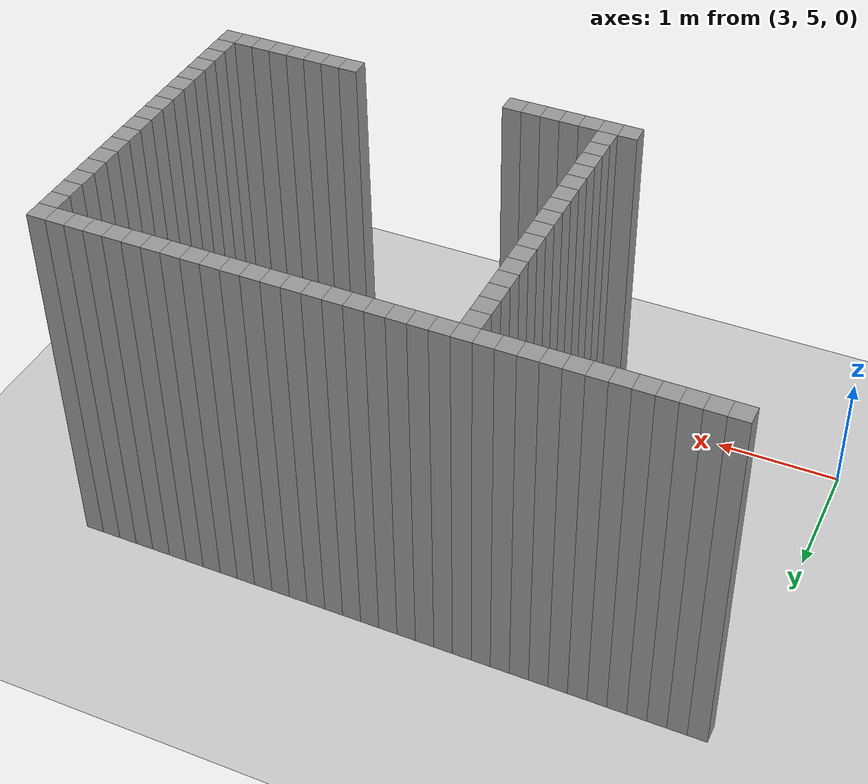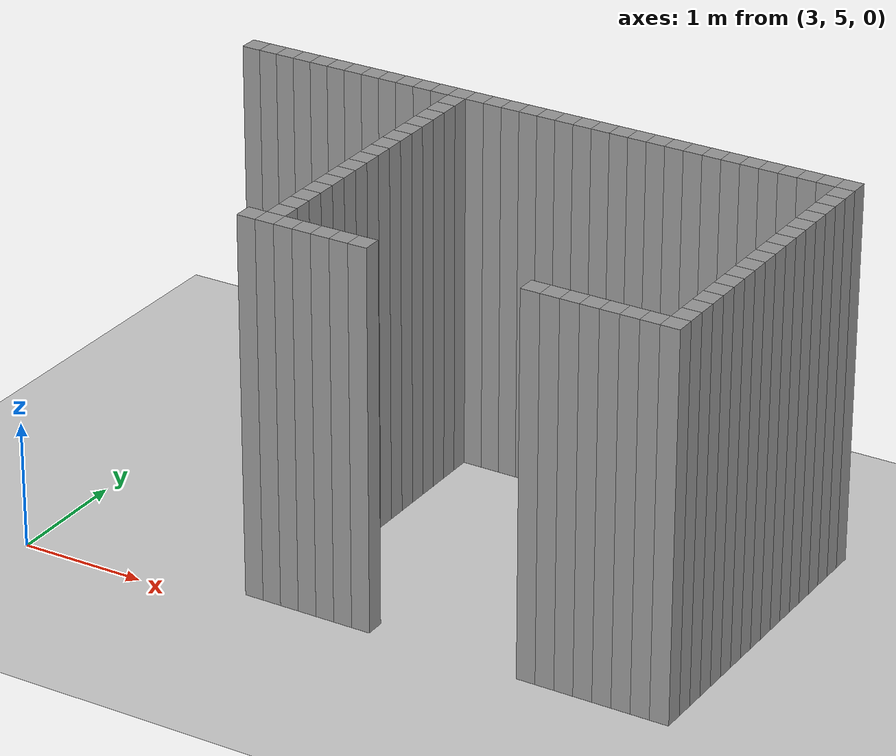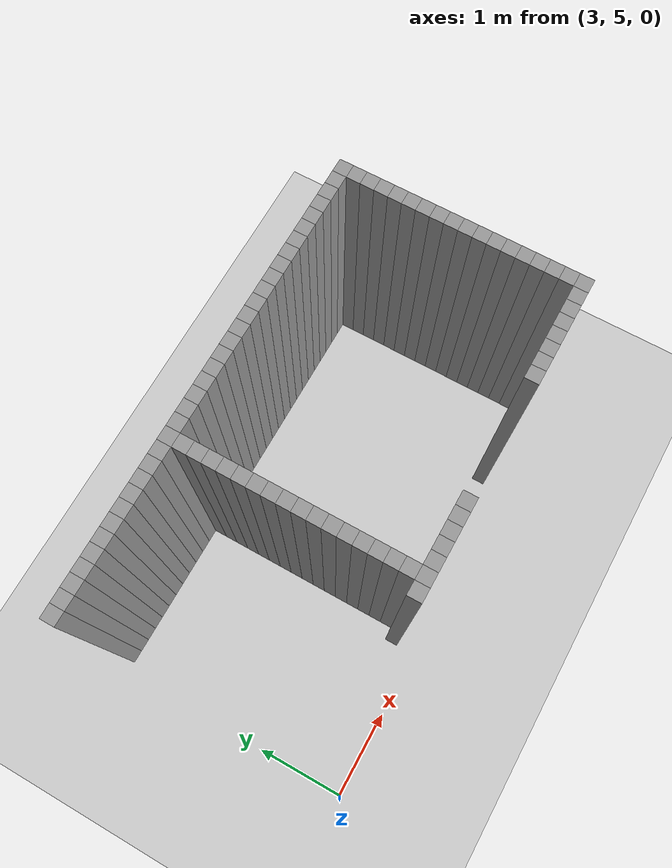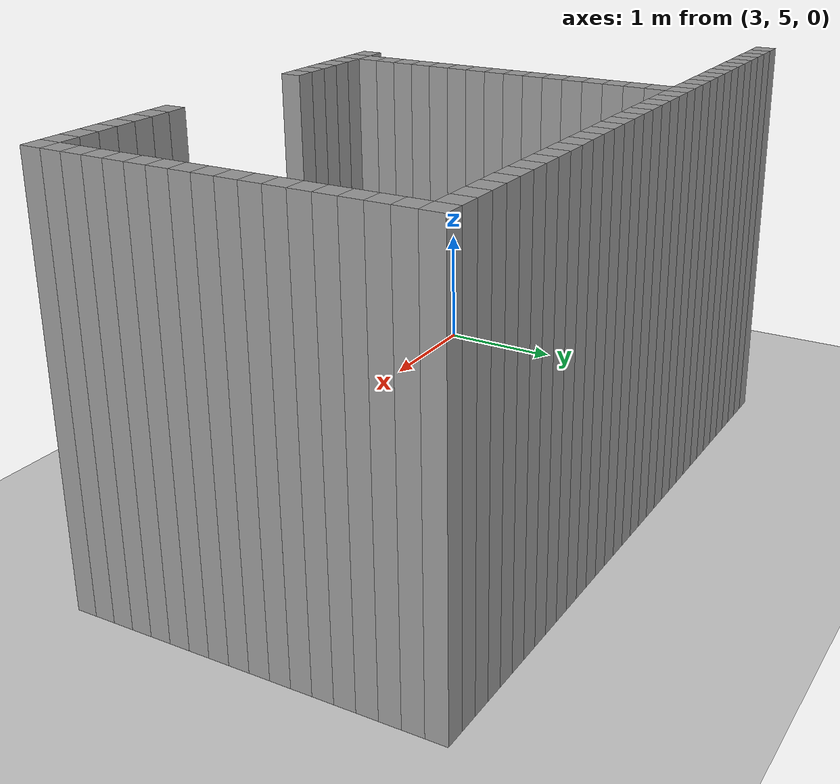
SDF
<sdf version="1.7">
 <world name="default">
  <model name="ground_plane">
   <static>1</static>
   <link name="link">
    <collision name="collision">
     <geometry><plane><normal>0 0 1</normal><size>100 100</size></plane></geometry>
     <surface>
      <contact><collide_bitmask>65535</collide_bitmask></contact>
      <friction><ode><mu>100</mu><mu2>50</mu2></ode></friction>
     </surface>
    </collision>
    <visual name="visual">
     <cast_shadows>0</cast_shadows>
     <geometry><plane><normal>0 0 1</normal><size>100 100</size></plane></geometry>
     <material>
      <script><uri>file://media/materials/scripts/gazebo.material</uri><name>Gazebo/Grey</name></script>
     </material>
    </visual>
   </link>
  </model>
  <model name="image45004">
   <pose>-1 -1 0 0 -0 0</pose>
   <link name="Wall_241">
    <collision name="Wall_241_Collision">
     <geometry><box><size>0.15 0.15 3</size></box></geometry>
     <pose>0 0 1.5 0 -0 0</pose>
    </collision>
    <visual name="Wall_241_Visual">
     <pose>0 0 1.5 0 -0 0</pose>
     <geometry><box><size>0.15 0.15 3</size></box></geometry>
     <material>
      <script><uri>file://media/materials/scripts/gazebo.material</uri><name>Gazebo/Grey</name></script>
      <ambient>1 1 1 1</ambient>
     </material>
     <meta><layer>0</layer></meta>
    </visual>
    <pose>4.2 8.85 0 0 -0 0</pose>
   </link>
   <link name="Wall_246">
    <collision name="Wall_246_Collision">
     <geometry><box><size>0.15 0.15 3</size></box></geometry>
     <pose>0 0 1.5 0 -0 0</pose>
    </collision>
    <visual name="Wall_246_Visual">
     <pose>0 0 1.5 0 -0 0</pose>
     <geometry><box><size>0.15 0.15 3</size></box></geometry>
     <material>
      <script><uri>file://media/materials/scripts/gazebo.material</uri><name>Gazebo/Grey</name></script>
      <ambient>1 1 1 1</ambient>
     </material>
     <meta><layer>0</layer></meta>
    </visual>
    <pose>4.35 8.85 0 0 -0 0</pose>
   </link>
   <link name="Wall_250">
    <collision name="Wall_250_Collision">
     <geometry><box><size>0.15 0.15 3</size></box></geometry>
     <pose>0 0 1.5 0 -0 0</pose>
    </collision>
    <visual name="Wall_250_Visual">
     <pose>0 0 1.5 0 -0 0</pose>
     <geometry><box><size>0.15 0.15 3</size></box></geometry>
     <material>
      <script><uri>file://media/materials/scripts/gazebo.material</uri><name>Gazebo/Grey</name></script>
      <ambient>1 1 1 1</ambient>
     </material>
     <meta><layer>0</layer></meta>
    </visual>
    <pose>4.5 8.85 0 0 -0 0</pose>
   </link>
   <link name="Wall_253">
    <collision name="Wall_253_Collision">
     <geometry><box><size>0.15 0.15 3</size></box></geometry>
     <pose>0 0 1.5 0 -0 0</pose>
    </collision>
    <visual name="Wall_253_Visual">
     <pose>0 0 1.5 0 -0 0</pose>
     <geometry><box><size>0.15 0.15 3</size></box></geometry>
     <material>
      <script><uri>file://media/materials/scripts/gazebo.material</uri><name>Gazebo/Grey</name></script>
      <ambient>1 1 1 1</ambient>
     </material>
     <meta><layer>0</layer></meta>
    </visual>
    <pose>4.6499999999999995 8.85 0 0 -0 0</pose>
   </link>
   <link name="Wall_256">
    <collision name="Wall_256_Collision">
     <geometry><box><size>0.15 0.15 3</size></box></geometry>
     <pose>0 0 1.5 0 -0 0</pose>
    </collision>
    <visual name="Wall_256_Visual">
     <pose>0 0 1.5 0 -0 0</pose>
     <geometry><box><size>0.15 0.15 3</size></box></geometry>
     <material>
      <script><uri>file://media/materials/scripts/gazebo.material</uri><name>Gazebo/Grey</name></script>
      <ambient>1 1 1 1</ambient>
     </material>
     <meta><layer>0</layer></meta>
    </visual>
    <pose>4.8 8.85 0 0 -0 0</pose>
   </link>
   <link name="Wall_259">
    <collision name="Wall_259_Collision">
     <geometry><box><size>0.15 0.15 3</size></box></geometry>
     <pose>0 0 1.5 0 -0 0</pose>
    </collision>
    <visual name="Wall_259_Visual">
     <pose>0 0 1.5 0 -0 0</pose>
     <geometry><box><size>0.15 0.15 3</size></box></geometry>
     <material>
      <script><uri>file://media/materials/scripts/gazebo.material</uri><name>Gazebo/Grey</name></script>
      <ambient>1 1 1 1</ambient>
     </material>
     <meta><layer>0</layer></meta>
    </visual>
    <pose>4.95 8.85 0 0 -0 0</pose>
   </link>
   <link name="Wall_262">
    <collision name="Wall_262_Collision">
     <geometry><box><size>0.15 0.15 3</size></box></geometry>
     <pose>0 0 1.5 0 -0 0</pose>
    </collision>
    <visual name="Wall_262_Visual">
     <pose>0 0 1.5 0 -0 0</pose>
     <geometry><box><size>0.15 0.15 3</size></box></geometry>
     <material>
      <script><uri>file://media/materials/scripts/gazebo.material</uri><name>Gazebo/Grey</name></script>
      <ambient>1 1 1 1</ambient>
     </material>
     <meta><layer>0</layer></meta>
    </visual>
    <pose>5.1 8.85 0 0 -0 0</pose>
   </link>
   <link name="Wall_265">
    <collision name="Wall_265_Collision">
     <geometry><box><size>0.15 0.15 3</size></box></geometry>
     <pose>0 0 1.5 0 -0 0</pose>
    </collision>
    <visual name="Wall_265_Visual">
     <pose>0 0 1.5 0 -0 0</pose>
     <geometry><box><size>0.15 0.15 3</size></box></geometry>
     <material>
      <script><uri>file://media/materials/scripts/gazebo.material</uri><name>Gazebo/Grey</name></script>
      <ambient>1 1 1 1</ambient>
     </material>
     <meta><layer>0</layer></meta>
    </visual>
    <pose>5.25 8.85 0 0 -0 0</pose>
   </link>
   <link name="Wall_268">
    <collision name="Wall_268_Collision">
     <geometry><box><size>0.15 0.15 3</size></box></geometry>
     <pose>0 0 1.5 0 -0 0</pose>
    </collision>
    <visual name="Wall_268_Visual">
     <pose>0 0 1.5 0 -0 0</pose>
     <geometry><box><size>0.15 0.15 3</size></box></geometry>
     <material>
      <script><uri>file://media/materials/scripts/gazebo.material</uri><name>Gazebo/Grey</name></script>
      <ambient>1 1 1 1</ambient>
     </material>
     <meta><layer>0</layer></meta>
    </visual>
    <pose>5.3999999999999995 8.85 0 0 -0 0</pose>
   </link>
   <link name="Wall_273">
    <collision name="Wall_273_Collision">
     <geometry><box><size>0.15 0.15 3</size></box></geometry>
     <pose>0 0 1.5 0 -0 0</pose>
    </collision>
    <visual name="Wall_273_Visual">
     <pose>0 0 1.5 0 -0 0</pose>
     <geometry><box><size>0.15 0.15 3</size></box></geometry>
     <material>
      <script><uri>file://media/materials/scripts/gazebo.material</uri><name>Gazebo/Grey</name></script>
      <ambient>1 1 1 1</ambient>
     </material>
     <meta><layer>0</layer></meta>
    </visual>
    <pose>5.55 8.85 0 0 -0 0</pose>
   </link>
   <link name="Wall_279">
    <collision name="Wall_279_Collision">
     <geometry><box><size>0.15 0.15 3</size></box></geometry>
     <pose>0 0 1.5 0 -0 0</pose>
    </collision>
    <visual name="Wall_279_Visual">
     <pose>0 0 1.5 0 -0 0</pose>
     <geometry><box><size>0.15 0.15 3</size></box></geometry>
     <material>
      <script><uri>file://media/materials/scripts/gazebo.material</uri><name>Gazebo/Grey</name></script>
      <ambient>1 1 1 1</ambient>
     </material>
     <meta><layer>0</layer></meta>
    </visual>
    <pose>5.7 8.85 0 0 -0 0</pose>
   </link>
   <link name="Wall_293">
    <collision name="Wall_293_Collision">
     <geometry><box><size>0.15 0.15 3</size></box></geometry>
     <pose>0 0 1.5 0 -0 0</pose>
    </collision>
    <visual name="Wall_293_Visual">
     <pose>0 0 1.5 0 -0 0</pose>
     <geometry><box><size>0.15 0.15 3</size></box></geometry>
     <material>
      <script><uri>file://media/materials/scripts/gazebo.material</uri><name>Gazebo/Grey</name></script>
      <ambient>1 1 1 1</ambient>
     </material>
     <meta><layer>0</layer></meta>
    </visual>
    <pose>5.85 6.3 0 0 -0 0</pose>
   </link>
   <link name="Wall_294">
    <collision name="Wall_294_Collision">
     <geometry><box><size>0.15 0.15 3</size></box></geometry>
     <pose>0 0 1.5 0 -0 0</pose>
    </collision>
    <visual name="Wall_294_Visual">
     <pose>0 0 1.5 0 -0 0</pose>
     <geometry><box><size>0.15 0.15 3</size></box></geometry>
     <material>
      <script><uri>file://media/materials/scripts/gazebo.material</uri><name>Gazebo/Grey</name></script>
      <ambient>1 1 1 1</ambient>
     </material>
     <meta><layer>0</layer></meta>
    </visual>
    <pose>5.85 8.85 0 0 -0 0</pose>
   </link>
   <link name="Wall_307">
    <collision name="Wall_307_Collision">
     <geometry><box><size>0.15 0.15 3</size></box></geometry>
     <pose>0 0 1.5 0 -0 0</pose>
    </collision>
    <visual name="Wall_307_Visual">
     <pose>0 0 1.5 0 -0 0</pose>
     <geometry><box><size>0.15 0.15 3</size></box></geometry>
     <material>
      <script><uri>file://media/materials/scripts/gazebo.material</uri><name>Gazebo/Grey</name></script>
      <ambient>1 1 1 1</ambient>
     </material>
     <meta><layer>0</layer></meta>
    </visual>
    <pose>6.0 6.3 0 0 -0 0</pose>
   </link>
   <link name="Wall_308">
    <collision name="Wall_308_Collision">
     <geometry><box><size>0.15 0.15 3</size></box></geometry>
     <pose>0 0 1.5 0 -0 0</pose>
    </collision>
    <visual name="Wall_308_Visual">
     <pose>0 0 1.5 0 -0 0</pose>
     <geometry><box><size>0.15 0.15 3</size></box></geometry>
     <material>
      <script><uri>file://media/materials/scripts/gazebo.material</uri><name>Gazebo/Grey</name></script>
      <ambient>1 1 1 1</ambient>
     </material>
     <meta><layer>0</layer></meta>
    </visual>
    <pose>6.0 6.45 0 0 -0 0</pose>
   </link>
   <link name="Wall_309">
    <collision name="Wall_309_Collision">
     <geometry><box><size>0.15 0.15 3</size></box></geometry>
     <pose>0 0 1.5 0 -0 0</pose>
    </collision>
    <visual name="Wall_309_Visual">
     <pose>0 0 1.5 0 -0 0</pose>
     <geometry><box><size>0.15 0.15 3</size></box></geometry>
     <material>
      <script><uri>file://media/materials/scripts/gazebo.material</uri><name>Gazebo/Grey</name></script>
      <ambient>1 1 1 1</ambient>
     </material>
     <meta><layer>0</layer></meta>
    </visual>
    <pose>6.0 6.6 0 0 -0 0</pose>
   </link>
   <link name="Wall_310">
    <collision name="Wall_310_Collision">
     <geometry><box><size>0.15 0.15 3</size></box></geometry>
     <pose>0 0 1.5 0 -0 0</pose>
    </collision>
    <visual name="Wall_310_Visual">
     <pose>0 0 1.5 0 -0 0</pose>
     <geometry><box><size>0.15 0.15 3</size></box></geometry>
     <material>
      <script><uri>file://media/materials/scripts/gazebo.material</uri><name>Gazebo/Grey</name></script>
      <ambient>1 1 1 1</ambient>
     </material>
     <meta><layer>0</layer></meta>
    </visual>
    <pose>6.0 6.75 0 0 -0 0</pose>
   </link>
   <link name="Wall_311">
    <collision name="Wall_311_Collision">
     <geometry><box><size>0.15 0.15 3</size></box></geometry>
     <pose>0 0 1.5 0 -0 0</pose>
    </collision>
    <visual name="Wall_311_Visual">
     <pose>0 0 1.5 0 -0 0</pose>
     <geometry><box><size>0.15 0.15 3</size></box></geometry>
     <material>
      <script><uri>file://media/materials/scripts/gazebo.material</uri><name>Gazebo/Grey</name></script>
      <ambient>1 1 1 1</ambient>
     </material>
     <meta><layer>0</layer></meta>
    </visual>
    <pose>6.0 6.8999999999999995 0 0 -0 0</pose>
   </link>
   <link name="Wall_312">
    <collision name="Wall_312_Collision">
     <geometry><box><size>0.15 0.15 3</size></box></geometry>
     <pose>0 0 1.5 0 -0 0</pose>
    </collision>
    <visual name="Wall_312_Visual">
     <pose>0 0 1.5 0 -0 0</pose>
     <geometry><box><size>0.15 0.15 3</size></box></geometry>
     <material>
      <script><uri>file://media/materials/scripts/gazebo.material</uri><name>Gazebo/Grey</name></script>
      <ambient>1 1 1 1</ambient>
     </material>
     <meta><layer>0</layer></meta>
    </visual>
    <pose>6.0 7.05 0 0 -0 0</pose>
   </link>
   <link name="Wall_313">
    <collision name="Wall_313_Collision">
     <geometry><box><size>0.15 0.15 3</size></box></geometry>
     <pose>0 0 1.5 0 -0 0</pose>
    </collision>
    <visual name="Wall_313_Visual">
     <pose>0 0 1.5 0 -0 0</pose>
     <geometry><box><size>0.15 0.15 3</size></box></geometry>
     <material>
      <script><uri>file://media/materials/scripts/gazebo.material</uri><name>Gazebo/Grey</name></script>
      <ambient>1 1 1 1</ambient>
     </material>
     <meta><layer>0</layer></meta>
    </visual>
    <pose>6.0 7.199999999999999 0 0 -0 0</pose>
   </link>
   <link name="Wall_314">
    <collision name="Wall_314_Collision">
     <geometry><box><size>0.15 0.15 3</size></box></geometry>
     <pose>0 0 1.5 0 -0 0</pose>
    </collision>
    <visual name="Wall_314_Visual">
     <pose>0 0 1.5 0 -0 0</pose>
     <geometry><box><size>0.15 0.15 3</size></box></geometry>
     <material>
      <script><uri>file://media/materials/scripts/gazebo.material</uri><name>Gazebo/Grey</name></script>
      <ambient>1 1 1 1</ambient>
     </material>
     <meta><layer>0</layer></meta>
    </visual>
    <pose>6.0 7.35 0 0 -0 0</pose>
   </link>
   <link name="Wall_315">
    <collision name="Wall_315_Collision">
     <geometry><box><size>0.15 0.15 3</size></box></geometry>
     <pose>0 0 1.5 0 -0 0</pose>
    </collision>
    <visual name="Wall_315_Visual">
     <pose>0 0 1.5 0 -0 0</pose>
     <geometry><box><size>0.15 0.15 3</size></box></geometry>
     <material>
      <script><uri>file://media/materials/scripts/gazebo.material</uri><name>Gazebo/Grey</name></script>
      <ambient>1 1 1 1</ambient>
     </material>
     <meta><layer>0</layer></meta>
    </visual>
    <pose>6.0 7.5 0 0 -0 0</pose>
   </link>
   <link name="Wall_316">
    <collision name="Wall_316_Collision">
     <geometry><box><size>0.15 0.15 3</size></box></geometry>
     <pose>0 0 1.5 0 -0 0</pose>
    </collision>
    <visual name="Wall_316_Visual">
     <pose>0 0 1.5 0 -0 0</pose>
     <geometry><box><size>0.15 0.15 3</size></box></geometry>
     <material>
      <script><uri>file://media/materials/scripts/gazebo.material</uri><name>Gazebo/Grey</name></script>
      <ambient>1 1 1 1</ambient>
     </material>
     <meta><layer>0</layer></meta>
    </visual>
    <pose>6.0 7.6499999999999995 0 0 -0 0</pose>
   </link>
   <link name="Wall_317">
    <collision name="Wall_317_Collision">
     <geometry><box><size>0.15 0.15 3</size></box></geometry>
     <pose>0 0 1.5 0 -0 0</pose>
    </collision>
    <visual name="Wall_317_Visual">
     <pose>0 0 1.5 0 -0 0</pose>
     <geometry><box><size>0.15 0.15 3</size></box></geometry>
     <material>
      <script><uri>file://media/materials/scripts/gazebo.material</uri><name>Gazebo/Grey</name></script>
      <ambient>1 1 1 1</ambient>
     </material>
     <meta><layer>0</layer></meta>
    </visual>
    <pose>6.0 7.8 0 0 -0 0</pose>
   </link>
   <link name="Wall_318">
    <collision name="Wall_318_Collision">
     <geometry><box><size>0.15 0.15 3</size></box></geometry>
     <pose>0 0 1.5 0 -0 0</pose>
    </collision>
    <visual name="Wall_318_Visual">
     <pose>0 0 1.5 0 -0 0</pose>
     <geometry><box><size>0.15 0.15 3</size></box></geometry>
     <material>
      <script><uri>file://media/materials/scripts/gazebo.material</uri><name>Gazebo/Grey</name></script>
      <ambient>1 1 1 1</ambient>
     </material>
     <meta><layer>0</layer></meta>
    </visual>
    <pose>6.0 7.949999999999999 0 0 -0 0</pose>
   </link>
   <link name="Wall_319">
    <collision name="Wall_319_Collision">
     <geometry><box><size>0.15 0.15 3</size></box></geometry>
     <pose>0 0 1.5 0 -0 0</pose>
    </collision>
    <visual name="Wall_319_Visual">
     <pose>0 0 1.5 0 -0 0</pose>
     <geometry><box><size>0.15 0.15 3</size></box></geometry>
     <material>
      <script><uri>file://media/materials/scripts/gazebo.material</uri><name>Gazebo/Grey</name></script>
      <ambient>1 1 1 1</ambient>
     </material>
     <meta><layer>0</layer></meta>
    </visual>
    <pose>6.0 8.1 0 0 -0 0</pose>
   </link>
   <link name="Wall_320">
    <collision name="Wall_320_Collision">
     <geometry><box><size>0.15 0.15 3</size></box></geometry>
     <pose>0 0 1.5 0 -0 0</pose>
    </collision>
    <visual name="Wall_320_Visual">
     <pose>0 0 1.5 0 -0 0</pose>
     <geometry><box><size>0.15 0.15 3</size></box></geometry>
     <material>
      <script><uri>file://media/materials/scripts/gazebo.material</uri><name>Gazebo/Grey</name></script>
      <ambient>1 1 1 1</ambient>
     </material>
     <meta><layer>0</layer></meta>
    </visual>
    <pose>6.0 8.25 0 0 -0 0</pose>
   </link>
   <link name="Wall_321">
    <collision name="Wall_321_Collision">
     <geometry><box><size>0.15 0.15 3</size></box></geometry>
     <pose>0 0 1.5 0 -0 0</pose>
    </collision>
    <visual name="Wall_321_Visual">
     <pose>0 0 1.5 0 -0 0</pose>
     <geometry><box><size>0.15 0.15 3</size></box></geometry>
     <material>
      <script><uri>file://media/materials/scripts/gazebo.material</uri><name>Gazebo/Grey</name></script>
      <ambient>1 1 1 1</ambient>
     </material>
     <meta><layer>0</layer></meta>
    </visual>
    <pose>6.0 8.4 0 0 -0 0</pose>
   </link>
   <link name="Wall_322">
    <collision name="Wall_322_Collision">
     <geometry><box><size>0.15 0.15 3</size></box></geometry>
     <pose>0 0 1.5 0 -0 0</pose>
    </collision>
    <visual name="Wall_322_Visual">
     <pose>0 0 1.5 0 -0 0</pose>
     <geometry><box><size>0.15 0.15 3</size></box></geometry>
     <material>
      <script><uri>file://media/materials/scripts/gazebo.material</uri><name>Gazebo/Grey</name></script>
      <ambient>1 1 1 1</ambient>
     </material>
     <meta><layer>0</layer></meta>
    </visual>
    <pose>6.0 8.549999999999999 0 0 -0 0</pose>
   </link>
   <link name="Wall_323">
    <collision name="Wall_323_Collision">
     <geometry><box><size>0.15 0.15 3</size></box></geometry>
     <pose>0 0 1.5 0 -0 0</pose>
    </collision>
    <visual name="Wall_323_Visual">
     <pose>0 0 1.5 0 -0 0</pose>
     <geometry><box><size>0.15 0.15 3</size></box></geometry>
     <material>
      <script><uri>file://media/materials/scripts/gazebo.material</uri><name>Gazebo/Grey</name></script>
      <ambient>1 1 1 1</ambient>
     </material>
     <meta><layer>0</layer></meta>
    </visual>
    <pose>6.0 8.7 0 0 -0 0</pose>
   </link>
   <link name="Wall_324">
    <collision name="Wall_324_Collision">
     <geometry><box><size>0.15 0.15 3</size></box></geometry>
     <pose>0 0 1.5 0 -0 0</pose>
    </collision>
    <visual name="Wall_324_Visual">
     <pose>0 0 1.5 0 -0 0</pose>
     <geometry><box><size>0.15 0.15 3</size></box></geometry>
     <material>
      <script><uri>file://media/materials/scripts/gazebo.material</uri><name>Gazebo/Grey</name></script>
      <ambient>1 1 1 1</ambient>
     </material>
     <meta><layer>0</layer></meta>
    </visual>
    <pose>6.0 8.85 0 0 -0 0</pose>
   </link>
   <link name="Wall_327">
    <collision name="Wall_327_Collision">
     <geometry><box><size>0.15 0.15 3</size></box></geometry>
     <pose>0 0 1.5 0 -0 0</pose>
    </collision>
    <visual name="Wall_327_Visual">
     <pose>0 0 1.5 0 -0 0</pose>
     <geometry><box><size>0.15 0.15 3</size></box></geometry>
     <material>
      <script><uri>file://media/materials/scripts/gazebo.material</uri><name>Gazebo/Grey</name></script>
      <ambient>1 1 1 1</ambient>
     </material>
     <meta><layer>0</layer></meta>
    </visual>
    <pose>6.1499999999999995 6.3 0 0 -0 0</pose>
   </link>
   <link name="Wall_328">
    <collision name="Wall_328_Collision">
     <geometry><box><size>0.15 0.15 3</size></box></geometry>
     <pose>0 0 1.5 0 -0 0</pose>
    </collision>
    <visual name="Wall_328_Visual">
     <pose>0 0 1.5 0 -0 0</pose>
     <geometry><box><size>0.15 0.15 3</size></box></geometry>
     <material>
      <script><uri>file://media/materials/scripts/gazebo.material</uri><name>Gazebo/Grey</name></script>
      <ambient>1 1 1 1</ambient>
     </material>
     <meta><layer>0</layer></meta>
    </visual>
    <pose>6.1499999999999995 8.85 0 0 -0 0</pose>
   </link>
   <link name="Wall_331">
    <collision name="Wall_331_Collision">
     <geometry><box><size>0.15 0.15 3</size></box></geometry>
     <pose>0 0 1.5 0 -0 0</pose>
    </collision>
    <visual name="Wall_331_Visual">
     <pose>0 0 1.5 0 -0 0</pose>
     <geometry><box><size>0.15 0.15 3</size></box></geometry>
     <material>
      <script><uri>file://media/materials/scripts/gazebo.material</uri><name>Gazebo/Grey</name></script>
      <ambient>1 1 1 1</ambient>
     </material>
     <meta><layer>0</layer></meta>
    </visual>
    <pose>6.3 6.3 0 0 -0 0</pose>
   </link>
   <link name="Wall_332">
    <collision name="Wall_332_Collision">
     <geometry><box><size>0.15 0.15 3</size></box></geometry>
     <pose>0 0 1.5 0 -0 0</pose>
    </collision>
    <visual name="Wall_332_Visual">
     <pose>0 0 1.5 0 -0 0</pose>
     <geometry><box><size>0.15 0.15 3</size></box></geometry>
     <material>
      <script><uri>file://media/materials/scripts/gazebo.material</uri><name>Gazebo/Grey</name></script>
      <ambient>1 1 1 1</ambient>
     </material>
     <meta><layer>0</layer></meta>
    </visual>
    <pose>6.3 8.85 0 0 -0 0</pose>
   </link>
   <link name="Wall_335">
    <collision name="Wall_335_Collision">
     <geometry><box><size>0.15 0.15 3</size></box></geometry>
     <pose>0 0 1.5 0 -0 0</pose>
    </collision>
    <visual name="Wall_335_Visual">
     <pose>0 0 1.5 0 -0 0</pose>
     <geometry><box><size>0.15 0.15 3</size></box></geometry>
     <material>
      <script><uri>file://media/materials/scripts/gazebo.material</uri><name>Gazebo/Grey</name></script>
      <ambient>1 1 1 1</ambient>
     </material>
     <meta><layer>0</layer></meta>
    </visual>
    <pose>6.45 6.3 0 0 -0 0</pose>
   </link>
   <link name="Wall_336">
    <collision name="Wall_336_Collision">
     <geometry><box><size>0.15 0.15 3</size></box></geometry>
     <pose>0 0 1.5 0 -0 0</pose>
    </collision>
    <visual name="Wall_336_Visual">
     <pose>0 0 1.5 0 -0 0</pose>
     <geometry><box><size>0.15 0.15 3</size></box></geometry>
     <material>
      <script><uri>file://media/materials/scripts/gazebo.material</uri><name>Gazebo/Grey</name></script>
      <ambient>1 1 1 1</ambient>
     </material>
     <meta><layer>0</layer></meta>
    </visual>
    <pose>6.45 8.85 0 0 -0 0</pose>
   </link>
   <link name="Wall_339">
    <collision name="Wall_339_Collision">
     <geometry><box><size>0.15 0.15 3</size></box></geometry>
     <pose>0 0 1.5 0 -0 0</pose>
    </collision>
    <visual name="Wall_339_Visual">
     <pose>0 0 1.5 0 -0 0</pose>
     <geometry><box><size>0.15 0.15 3</size></box></geometry>
     <material>
      <script><uri>file://media/materials/scripts/gazebo.material</uri><name>Gazebo/Grey</name></script>
      <ambient>1 1 1 1</ambient>
     </material>
     <meta><layer>0</layer></meta>
    </visual>
    <pose>6.6 6.3 0 0 -0 0</pose>
   </link>
   <link name="Wall_340">
    <collision name="Wall_340_Collision">
     <geometry><box><size>0.15 0.15 3</size></box></geometry>
     <pose>0 0 1.5 0 -0 0</pose>
    </collision>
    <visual name="Wall_340_Visual">
     <pose>0 0 1.5 0 -0 0</pose>
     <geometry><box><size>0.15 0.15 3</size></box></geometry>
     <material>
      <script><uri>file://media/materials/scripts/gazebo.material</uri><name>Gazebo/Grey</name></script>
      <ambient>1 1 1 1</ambient>
     </material>
     <meta><layer>0</layer></meta>
    </visual>
    <pose>6.6 8.85 0 0 -0 0</pose>
   </link>
   <link name="Wall_343">
    <collision name="Wall_343_Collision">
     <geometry><box><size>0.15 0.15 3</size></box></geometry>
     <pose>0 0 1.5 0 -0 0</pose>
    </collision>
    <visual name="Wall_343_Visual">
     <pose>0 0 1.5 0 -0 0</pose>
     <geometry><box><size>0.15 0.15 3</size></box></geometry>
     <material>
      <script><uri>file://media/materials/scripts/gazebo.material</uri><name>Gazebo/Grey</name></script>
      <ambient>1 1 1 1</ambient>
     </material>
     <meta><layer>0</layer></meta>
    </visual>
    <pose>6.75 6.3 0 0 -0 0</pose>
   </link>
   <link name="Wall_344">
    <collision name="Wall_344_Collision">
     <geometry><box><size>0.15 0.15 3</size></box></geometry>
     <pose>0 0 1.5 0 -0 0</pose>
    </collision>
    <visual name="Wall_344_Visual">
     <pose>0 0 1.5 0 -0 0</pose>
     <geometry><box><size>0.15 0.15 3</size></box></geometry>
     <material>
      <script><uri>file://media/materials/scripts/gazebo.material</uri><name>Gazebo/Grey</name></script>
      <ambient>1 1 1 1</ambient>
     </material>
     <meta><layer>0</layer></meta>
    </visual>
    <pose>6.75 8.85 0 0 -0 0</pose>
   </link>
   <link name="Wall_351">
    <collision name="Wall_351_Collision">
     <geometry><box><size>0.15 0.15 3</size></box></geometry>
     <pose>0 0 1.5 0 -0 0</pose>
    </collision>
    <visual name="Wall_351_Visual">
     <pose>0 0 1.5 0 -0 0</pose>
     <geometry><box><size>0.15 0.15 3</size></box></geometry>
     <material>
      <script><uri>file://media/materials/scripts/gazebo.material</uri><name>Gazebo/Grey</name></script>
      <ambient>1 1 1 1</ambient>
     </material>
     <meta><layer>0</layer></meta>
    </visual>
    <pose>6.8999999999999995 8.85 0 0 -0 0</pose>
   </link>
   <link name="Wall_356">
    <collision name="Wall_356_Collision">
     <geometry><box><size>0.15 0.15 3</size></box></geometry>
     <pose>0 0 1.5 0 -0 0</pose>
    </collision>
    <visual name="Wall_356_Visual">
     <pose>0 0 1.5 0 -0 0</pose>
     <geometry><box><size>0.15 0.15 3</size></box></geometry>
     <material>
      <script><uri>file://media/materials/scripts/gazebo.material</uri><name>Gazebo/Grey</name></script>
      <ambient>1 1 1 1</ambient>
     </material>
     <meta><layer>0</layer></meta>
    </visual>
    <pose>7.05 8.85 0 0 -0 0</pose>
   </link>
   <link name="Wall_361">
    <collision name="Wall_361_Collision">
     <geometry><box><size>0.15 0.15 3</size></box></geometry>
     <pose>0 0 1.5 0 -0 0</pose>
    </collision>
    <visual name="Wall_361_Visual">
     <pose>0 0 1.5 0 -0 0</pose>
     <geometry><box><size>0.15 0.15 3</size></box></geometry>
     <material>
      <script><uri>file://media/materials/scripts/gazebo.material</uri><name>Gazebo/Grey</name></script>
      <ambient>1 1 1 1</ambient>
     </material>
     <meta><layer>0</layer></meta>
    </visual>
    <pose>7.199999999999999 8.85 0 0 -0 0</pose>
   </link>
   <link name="Wall_366">
    <collision name="Wall_366_Collision">
     <geometry><box><size>0.15 0.15 3</size></box></geometry>
     <pose>0 0 1.5 0 -0 0</pose>
    </collision>
    <visual name="Wall_366_Visual">
     <pose>0 0 1.5 0 -0 0</pose>
     <geometry><box><size>0.15 0.15 3</size></box></geometry>
     <material>
      <script><uri>file://media/materials/scripts/gazebo.material</uri><name>Gazebo/Grey</name></script>
      <ambient>1 1 1 1</ambient>
     </material>
     <meta><layer>0</layer></meta>
    </visual>
    <pose>7.35 8.85 0 0 -0 0</pose>
   </link>
   <link name="Wall_371">
    <collision name="Wall_371_Collision">
     <geometry><box><size>0.15 0.15 3</size></box></geometry>
     <pose>0 0 1.5 0 -0 0</pose>
    </collision>
    <visual name="Wall_371_Visual">
     <pose>0 0 1.5 0 -0 0</pose>
     <geometry><box><size>0.15 0.15 3</size></box></geometry>
     <material>
      <script><uri>file://media/materials/scripts/gazebo.material</uri><name>Gazebo/Grey</name></script>
      <ambient>1 1 1 1</ambient>
     </material>
     <meta><layer>0</layer></meta>
    </visual>
    <pose>7.5 8.85 0 0 -0 0</pose>
   </link>
   <link name="Wall_376">
    <collision name="Wall_376_Collision">
     <geometry><box><size>0.15 0.15 3</size></box></geometry>
     <pose>0 0 1.5 0 -0 0</pose>
    </collision>
    <visual name="Wall_376_Visual">
     <pose>0 0 1.5 0 -0 0</pose>
     <geometry><box><size>0.15 0.15 3</size></box></geometry>
     <material>
      <script><uri>file://media/materials/scripts/gazebo.material</uri><name>Gazebo/Grey</name></script>
      <ambient>1 1 1 1</ambient>
     </material>
     <meta><layer>0</layer></meta>
    </visual>
    <pose>7.6499999999999995 8.85 0 0 -0 0</pose>
   </link>
   <link name="Wall_380">
    <collision name="Wall_380_Collision">
     <geometry><box><size>0.15 0.15 3</size></box></geometry>
     <pose>0 0 1.5 0 -0 0</pose>
    </collision>
    <visual name="Wall_380_Visual">
     <pose>0 0 1.5 0 -0 0</pose>
     <geometry><box><size>0.15 0.15 3</size></box></geometry>
     <material>
      <script><uri>file://media/materials/scripts/gazebo.material</uri><name>Gazebo/Grey</name></script>
      <ambient>1 1 1 1</ambient>
     </material>
     <meta><layer>0</layer></meta>
    </visual>
    <pose>7.8 8.85 0 0 -0 0</pose>
   </link>
   <link name="Wall_384">
    <collision name="Wall_384_Collision">
     <geometry><box><size>0.15 0.15 3</size></box></geometry>
     <pose>0 0 1.5 0 -0 0</pose>
    </collision>
    <visual name="Wall_384_Visual">
     <pose>0 0 1.5 0 -0 0</pose>
     <geometry><box><size>0.15 0.15 3</size></box></geometry>
     <material>
      <script><uri>file://media/materials/scripts/gazebo.material</uri><name>Gazebo/Grey</name></script>
      <ambient>1 1 1 1</ambient>
     </material>
     <meta><layer>0</layer></meta>
    </visual>
    <pose>7.949999999999999 8.85 0 0 -0 0</pose>
   </link>
   <link name="Wall_388">
    <collision name="Wall_388_Collision">
     <geometry><box><size>0.15 0.15 3</size></box></geometry>
     <pose>0 0 1.5 0 -0 0</pose>
    </collision>
    <visual name="Wall_388_Visual">
     <pose>0 0 1.5 0 -0 0</pose>
     <geometry><box><size>0.15 0.15 3</size></box></geometry>
     <material>
      <script><uri>file://media/materials/scripts/gazebo.material</uri><name>Gazebo/Grey</name></script>
      <ambient>1 1 1 1</ambient>
     </material>
     <meta><layer>0</layer></meta>
    </visual>
    <pose>8.1 6.3 0 0 -0 0</pose>
   </link>
   <link name="Wall_389">
    <collision name="Wall_389_Collision">
     <geometry><box><size>0.15 0.15 3</size></box></geometry>
     <pose>0 0 1.5 0 -0 0</pose>
    </collision>
    <visual name="Wall_389_Visual">
     <pose>0 0 1.5 0 -0 0</pose>
     <geometry><box><size>0.15 0.15 3</size></box></geometry>
     <material>
      <script><uri>file://media/materials/scripts/gazebo.material</uri><name>Gazebo/Grey</name></script>
      <ambient>1 1 1 1</ambient>
     </material>
     <meta><layer>0</layer></meta>
    </visual>
    <pose>8.1 8.85 0 0 -0 0</pose>
   </link>
   <link name="Wall_393">
    <collision name="Wall_393_Collision">
     <geometry><box><size>0.15 0.15 3</size></box></geometry>
     <pose>0 0 1.5 0 -0 0</pose>
    </collision>
    <visual name="Wall_393_Visual">
     <pose>0 0 1.5 0 -0 0</pose>
     <geometry><box><size>0.15 0.15 3</size></box></geometry>
     <material>
      <script><uri>file://media/materials/scripts/gazebo.material</uri><name>Gazebo/Grey</name></script>
      <ambient>1 1 1 1</ambient>
     </material>
     <meta><layer>0</layer></meta>
    </visual>
    <pose>8.25 6.3 0 0 -0 0</pose>
   </link>
   <link name="Wall_394">
    <collision name="Wall_394_Collision">
     <geometry><box><size>0.15 0.15 3</size></box></geometry>
     <pose>0 0 1.5 0 -0 0</pose>
    </collision>
    <visual name="Wall_394_Visual">
     <pose>0 0 1.5 0 -0 0</pose>
     <geometry><box><size>0.15 0.15 3</size></box></geometry>
     <material>
      <script><uri>file://media/materials/scripts/gazebo.material</uri><name>Gazebo/Grey</name></script>
      <ambient>1 1 1 1</ambient>
     </material>
     <meta><layer>0</layer></meta>
    </visual>
    <pose>8.25 8.85 0 0 -0 0</pose>
   </link>
   <link name="Wall_398">
    <collision name="Wall_398_Collision">
     <geometry><box><size>0.15 0.15 3</size></box></geometry>
     <pose>0 0 1.5 0 -0 0</pose>
    </collision>
    <visual name="Wall_398_Visual">
     <pose>0 0 1.5 0 -0 0</pose>
     <geometry><box><size>0.15 0.15 3</size></box></geometry>
     <material>
      <script><uri>file://media/materials/scripts/gazebo.material</uri><name>Gazebo/Grey</name></script>
      <ambient>1 1 1 1</ambient>
     </material>
     <meta><layer>0</layer></meta>
    </visual>
    <pose>8.4 6.3 0 0 -0 0</pose>
   </link>
   <link name="Wall_399">
    <collision name="Wall_399_Collision">
     <geometry><box><size>0.15 0.15 3</size></box></geometry>
     <pose>0 0 1.5 0 -0 0</pose>
    </collision>
    <visual name="Wall_399_Visual">
     <pose>0 0 1.5 0 -0 0</pose>
     <geometry><box><size>0.15 0.15 3</size></box></geometry>
     <material>
      <script><uri>file://media/materials/scripts/gazebo.material</uri><name>Gazebo/Grey</name></script>
      <ambient>1 1 1 1</ambient>
     </material>
     <meta><layer>0</layer></meta>
    </visual>
    <pose>8.4 8.85 0 0 -0 0</pose>
   </link>
   <link name="Wall_403">
    <collision name="Wall_403_Collision">
     <geometry><box><size>0.15 0.15 3</size></box></geometry>
     <pose>0 0 1.5 0 -0 0</pose>
    </collision>
    <visual name="Wall_403_Visual">
     <pose>0 0 1.5 0 -0 0</pose>
     <geometry><box><size>0.15 0.15 3</size></box></geometry>
     <material>
      <script><uri>file://media/materials/scripts/gazebo.material</uri><name>Gazebo/Grey</name></script>
      <ambient>1 1 1 1</ambient>
     </material>
     <meta><layer>0</layer></meta>
    </visual>
    <pose>8.549999999999999 6.3 0 0 -0 0</pose>
   </link>
   <link name="Wall_404">
    <collision name="Wall_404_Collision">
     <geometry><box><size>0.15 0.15 3</size></box></geometry>
     <pose>0 0 1.5 0 -0 0</pose>
    </collision>
    <visual name="Wall_404_Visual">
     <pose>0 0 1.5 0 -0 0</pose>
     <geometry><box><size>0.15 0.15 3</size></box></geometry>
     <material>
      <script><uri>file://media/materials/scripts/gazebo.material</uri><name>Gazebo/Grey</name></script>
      <ambient>1 1 1 1</ambient>
     </material>
     <meta><layer>0</layer></meta>
    </visual>
    <pose>8.549999999999999 8.85 0 0 -0 0</pose>
   </link>
   <link name="Wall_409">
    <collision name="Wall_409_Collision">
     <geometry><box><size>0.15 0.15 3</size></box></geometry>
     <pose>0 0 1.5 0 -0 0</pose>
    </collision>
    <visual name="Wall_409_Visual">
     <pose>0 0 1.5 0 -0 0</pose>
     <geometry><box><size>0.15 0.15 3</size></box></geometry>
     <material>
      <script><uri>file://media/materials/scripts/gazebo.material</uri><name>Gazebo/Grey</name></script>
      <ambient>1 1 1 1</ambient>
     </material>
     <meta><layer>0</layer></meta>
    </visual>
    <pose>8.7 6.3 0 0 -0 0</pose>
   </link>
   <link name="Wall_410">
    <collision name="Wall_410_Collision">
     <geometry><box><size>0.15 0.15 3</size></box></geometry>
     <pose>0 0 1.5 0 -0 0</pose>
    </collision>
    <visual name="Wall_410_Visual">
     <pose>0 0 1.5 0 -0 0</pose>
     <geometry><box><size>0.15 0.15 3</size></box></geometry>
     <material>
      <script><uri>file://media/materials/scripts/gazebo.material</uri><name>Gazebo/Grey</name></script>
      <ambient>1 1 1 1</ambient>
     </material>
     <meta><layer>0</layer></meta>
    </visual>
    <pose>8.7 8.85 0 0 -0 0</pose>
   </link>
   <link name="Wall_415">
    <collision name="Wall_415_Collision">
     <geometry><box><size>0.15 0.15 3</size></box></geometry>
     <pose>0 0 1.5 0 -0 0</pose>
    </collision>
    <visual name="Wall_415_Visual">
     <pose>0 0 1.5 0 -0 0</pose>
     <geometry><box><size>0.15 0.15 3</size></box></geometry>
     <material>
      <script><uri>file://media/materials/scripts/gazebo.material</uri><name>Gazebo/Grey</name></script>
      <ambient>1 1 1 1</ambient>
     </material>
     <meta><layer>0</layer></meta>
    </visual>
    <pose>8.85 6.3 0 0 -0 0</pose>
   </link>
   <link name="Wall_416">
    <collision name="Wall_416_Collision">
     <geometry><box><size>0.15 0.15 3</size></box></geometry>
     <pose>0 0 1.5 0 -0 0</pose>
    </collision>
    <visual name="Wall_416_Visual">
     <pose>0 0 1.5 0 -0 0</pose>
     <geometry><box><size>0.15 0.15 3</size></box></geometry>
     <material>
      <script><uri>file://media/materials/scripts/gazebo.material</uri><name>Gazebo/Grey</name></script>
      <ambient>1 1 1 1</ambient>
     </material>
     <meta><layer>0</layer></meta>
    </visual>
    <pose>8.85 8.85 0 0 -0 0</pose>
   </link>
   <link name="Wall_421">
    <collision name="Wall_421_Collision">
     <geometry><box><size>0.15 0.15 3</size></box></geometry>
     <pose>0 0 1.5 0 -0 0</pose>
    </collision>
    <visual name="Wall_421_Visual">
     <pose>0 0 1.5 0 -0 0</pose>
     <geometry><box><size>0.15 0.15 3</size></box></geometry>
     <material>
      <script><uri>file://media/materials/scripts/gazebo.material</uri><name>Gazebo/Grey</name></script>
      <ambient>1 1 1 1</ambient>
     </material>
     <meta><layer>0</layer></meta>
    </visual>
    <pose>9.0 6.3 0 0 -0 0</pose>
   </link>
   <link name="Wall_422">
    <collision name="Wall_422_Collision">
     <geometry><box><size>0.15 0.15 3</size></box></geometry>
     <pose>0 0 1.5 0 -0 0</pose>
    </collision>
    <visual name="Wall_422_Visual">
     <pose>0 0 1.5 0 -0 0</pose>
     <geometry><box><size>0.15 0.15 3</size></box></geometry>
     <material>
      <script><uri>file://media/materials/scripts/gazebo.material</uri><name>Gazebo/Grey</name></script>
      <ambient>1 1 1 1</ambient>
     </material>
     <meta><layer>0</layer></meta>
    </visual>
    <pose>9.0 8.85 0 0 -0 0</pose>
   </link>
   <link name="Wall_465">
    <collision name="Wall_465_Collision">
     <geometry><box><size>0.15 0.15 3</size></box></geometry>
     <pose>0 0 1.5 0 -0 0</pose>
    </collision>
    <visual name="Wall_465_Visual">
     <pose>0 0 1.5 0 -0 0</pose>
     <geometry><box><size>0.15 0.15 3</size></box></geometry>
     <material>
      <script><uri>file://media/materials/scripts/gazebo.material</uri><name>Gazebo/Grey</name></script>
      <ambient>1 1 1 1</ambient>
     </material>
     <meta><layer>0</layer></meta>
    </visual>
    <pose>9.15 6.3 0 0 -0 0</pose>
   </link>
   <link name="Wall_466">
    <collision name="Wall_466_Collision">
     <geometry><box><size>0.15 0.15 3</size></box></geometry>
     <pose>0 0 1.5 0 -0 0</pose>
    </collision>
    <visual name="Wall_466_Visual">
     <pose>0 0 1.5 0 -0 0</pose>
     <geometry><box><size>0.15 0.15 3</size></box></geometry>
     <material>
      <script><uri>file://media/materials/scripts/gazebo.material</uri><name>Gazebo/Grey</name></script>
      <ambient>1 1 1 1</ambient>
     </material>
     <meta><layer>0</layer></meta>
    </visual>
    <pose>9.15 6.45 0 0 -0 0</pose>
   </link>
   <link name="Wall_467">
    <collision name="Wall_467_Collision">
     <geometry><box><size>0.15 0.15 3</size></box></geometry>
     <pose>0 0 1.5 0 -0 0</pose>
    </collision>
    <visual name="Wall_467_Visual">
     <pose>0 0 1.5 0 -0 0</pose>
     <geometry><box><size>0.15 0.15 3</size></box></geometry>
     <material>
      <script><uri>file://media/materials/scripts/gazebo.material</uri><name>Gazebo/Grey</name></script>
      <ambient>1 1 1 1</ambient>
     </material>
     <meta><layer>0</layer></meta>
    </visual>
    <pose>9.15 6.6 0 0 -0 0</pose>
   </link>
   <link name="Wall_468">
    <collision name="Wall_468_Collision">
     <geometry><box><size>0.15 0.15 3</size></box></geometry>
     <pose>0 0 1.5 0 -0 0</pose>
    </collision>
    <visual name="Wall_468_Visual">
     <pose>0 0 1.5 0 -0 0</pose>
     <geometry><box><size>0.15 0.15 3</size></box></geometry>
     <material>
      <script><uri>file://media/materials/scripts/gazebo.material</uri><name>Gazebo/Grey</name></script>
      <ambient>1 1 1 1</ambient>
     </material>
     <meta><layer>0</layer></meta>
    </visual>
    <pose>9.15 6.75 0 0 -0 0</pose>
   </link>
   <link name="Wall_469">
    <collision name="Wall_469_Collision">
     <geometry><box><size>0.15 0.15 3</size></box></geometry>
     <pose>0 0 1.5 0 -0 0</pose>
    </collision>
    <visual name="Wall_469_Visual">
     <pose>0 0 1.5 0 -0 0</pose>
     <geometry><box><size>0.15 0.15 3</size></box></geometry>
     <material>
      <script><uri>file://media/materials/scripts/gazebo.material</uri><name>Gazebo/Grey</name></script>
      <ambient>1 1 1 1</ambient>
     </material>
     <meta><layer>0</layer></meta>
    </visual>
    <pose>9.15 6.8999999999999995 0 0 -0 0</pose>
   </link>
   <link name="Wall_470">
    <collision name="Wall_470_Collision">
     <geometry><box><size>0.15 0.15 3</size></box></geometry>
     <pose>0 0 1.5 0 -0 0</pose>
    </collision>
    <visual name="Wall_470_Visual">
     <pose>0 0 1.5 0 -0 0</pose>
     <geometry><box><size>0.15 0.15 3</size></box></geometry>
     <material>
      <script><uri>file://media/materials/scripts/gazebo.material</uri><name>Gazebo/Grey</name></script>
      <ambient>1 1 1 1</ambient>
     </material>
     <meta><layer>0</layer></meta>
    </visual>
    <pose>9.15 7.05 0 0 -0 0</pose>
   </link>
   <link name="Wall_471">
    <collision name="Wall_471_Collision">
     <geometry><box><size>0.15 0.15 3</size></box></geometry>
     <pose>0 0 1.5 0 -0 0</pose>
    </collision>
    <visual name="Wall_471_Visual">
     <pose>0 0 1.5 0 -0 0</pose>
     <geometry><box><size>0.15 0.15 3</size></box></geometry>
     <material>
      <script><uri>file://media/materials/scripts/gazebo.material</uri><name>Gazebo/Grey</name></script>
      <ambient>1 1 1 1</ambient>
     </material>
     <meta><layer>0</layer></meta>
    </visual>
    <pose>9.15 7.199999999999999 0 0 -0 0</pose>
   </link>
   <link name="Wall_472">
    <collision name="Wall_472_Collision">
     <geometry><box><size>0.15 0.15 3</size></box></geometry>
     <pose>0 0 1.5 0 -0 0</pose>
    </collision>
    <visual name="Wall_472_Visual">
     <pose>0 0 1.5 0 -0 0</pose>
     <geometry><box><size>0.15 0.15 3</size></box></geometry>
     <material>
      <script><uri>file://media/materials/scripts/gazebo.material</uri><name>Gazebo/Grey</name></script>
      <ambient>1 1 1 1</ambient>
     </material>
     <meta><layer>0</layer></meta>
    </visual>
    <pose>9.15 7.35 0 0 -0 0</pose>
   </link>
   <link name="Wall_473">
    <collision name="Wall_473_Collision">
     <geometry><box><size>0.15 0.15 3</size></box></geometry>
     <pose>0 0 1.5 0 -0 0</pose>
    </collision>
    <visual name="Wall_473_Visual">
     <pose>0 0 1.5 0 -0 0</pose>
     <geometry><box><size>0.15 0.15 3</size></box></geometry>
     <material>
      <script><uri>file://media/materials/scripts/gazebo.material</uri><name>Gazebo/Grey</name></script>
      <ambient>1 1 1 1</ambient>
     </material>
     <meta><layer>0</layer></meta>
    </visual>
    <pose>9.15 7.5 0 0 -0 0</pose>
   </link>
   <link name="Wall_474">
    <collision name="Wall_474_Collision">
     <geometry><box><size>0.15 0.15 3</size></box></geometry>
     <pose>0 0 1.5 0 -0 0</pose>
    </collision>
    <visual name="Wall_474_Visual">
     <pose>0 0 1.5 0 -0 0</pose>
     <geometry><box><size>0.15 0.15 3</size></box></geometry>
     <material>
      <script><uri>file://media/materials/scripts/gazebo.material</uri><name>Gazebo/Grey</name></script>
      <ambient>1 1 1 1</ambient>
     </material>
     <meta><layer>0</layer></meta>
    </visual>
    <pose>9.15 7.6499999999999995 0 0 -0 0</pose>
   </link>
   <link name="Wall_475">
    <collision name="Wall_475_Collision">
     <geometry><box><size>0.15 0.15 3</size></box></geometry>
     <pose>0 0 1.5 0 -0 0</pose>
    </collision>
    <visual name="Wall_475_Visual">
     <pose>0 0 1.5 0 -0 0</pose>
     <geometry><box><size>0.15 0.15 3</size></box></geometry>
     <material>
      <script><uri>file://media/materials/scripts/gazebo.material</uri><name>Gazebo/Grey</name></script>
      <ambient>1 1 1 1</ambient>
     </material>
     <meta><layer>0</layer></meta>
    </visual>
    <pose>9.15 7.8 0 0 -0 0</pose>
   </link>
   <link name="Wall_476">
    <collision name="Wall_476_Collision">
     <geometry><box><size>0.15 0.15 3</size></box></geometry>
     <pose>0 0 1.5 0 -0 0</pose>
    </collision>
    <visual name="Wall_476_Visual">
     <pose>0 0 1.5 0 -0 0</pose>
     <geometry><box><size>0.15 0.15 3</size></box></geometry>
     <material>
      <script><uri>file://media/materials/scripts/gazebo.material</uri><name>Gazebo/Grey</name></script>
      <ambient>1 1 1 1</ambient>
     </material>
     <meta><layer>0</layer></meta>
    </visual>
    <pose>9.15 7.949999999999999 0 0 -0 0</pose>
   </link>
   <link name="Wall_477">
    <collision name="Wall_477_Collision">
     <geometry><box><size>0.15 0.15 3</size></box></geometry>
     <pose>0 0 1.5 0 -0 0</pose>
    </collision>
    <visual name="Wall_477_Visual">
     <pose>0 0 1.5 0 -0 0</pose>
     <geometry><box><size>0.15 0.15 3</size></box></geometry>
     <material>
      <script><uri>file://media/materials/scripts/gazebo.material</uri><name>Gazebo/Grey</name></script>
      <ambient>1 1 1 1</ambient>
     </material>
     <meta><layer>0</layer></meta>
    </visual>
    <pose>9.15 8.1 0 0 -0 0</pose>
   </link>
   <link name="Wall_478">
    <collision name="Wall_478_Collision">
     <geometry><box><size>0.15 0.15 3</size></box></geometry>
     <pose>0 0 1.5 0 -0 0</pose>
    </collision>
    <visual name="Wall_478_Visual">
     <pose>0 0 1.5 0 -0 0</pose>
     <geometry><box><size>0.15 0.15 3</size></box></geometry>
     <material>
      <script><uri>file://media/materials/scripts/gazebo.material</uri><name>Gazebo/Grey</name></script>
      <ambient>1 1 1 1</ambient>
     </material>
     <meta><layer>0</layer></meta>
    </visual>
    <pose>9.15 8.25 0 0 -0 0</pose>
   </link>
   <link name="Wall_479">
    <collision name="Wall_479_Collision">
     <geometry><box><size>0.15 0.15 3</size></box></geometry>
     <pose>0 0 1.5 0 -0 0</pose>
    </collision>
    <visual name="Wall_479_Visual">
     <pose>0 0 1.5 0 -0 0</pose>
     <geometry><box><size>0.15 0.15 3</size></box></geometry>
     <material>
      <script><uri>file://media/materials/scripts/gazebo.material</uri><name>Gazebo/Grey</name></script>
      <ambient>1 1 1 1</ambient>
     </material>
     <meta><layer>0</layer></meta>
    </visual>
    <pose>9.15 8.4 0 0 -0 0</pose>
   </link>
   <link name="Wall_480">
    <collision name="Wall_480_Collision">
     <geometry><box><size>0.15 0.15 3</size></box></geometry>
     <pose>0 0 1.5 0 -0 0</pose>
    </collision>
    <visual name="Wall_480_Visual">
     <pose>0 0 1.5 0 -0 0</pose>
     <geometry><box><size>0.15 0.15 3</size></box></geometry>
     <material>
      <script><uri>file://media/materials/scripts/gazebo.material</uri><name>Gazebo/Grey</name></script>
      <ambient>1 1 1 1</ambient>
     </material>
     <meta><layer>0</layer></meta>
    </visual>
    <pose>9.15 8.549999999999999 0 0 -0 0</pose>
   </link>
   <link name="Wall_481">
    <collision name="Wall_481_Collision">
     <geometry><box><size>0.15 0.15 3</size></box></geometry>
     <pose>0 0 1.5 0 -0 0</pose>
    </collision>
    <visual name="Wall_481_Visual">
     <pose>0 0 1.5 0 -0 0</pose>
     <geometry><box><size>0.15 0.15 3</size></box></geometry>
     <material>
      <script><uri>file://media/materials/scripts/gazebo.material</uri><name>Gazebo/Grey</name></script>
      <ambient>1 1 1 1</ambient>
     </material>
     <meta><layer>0</layer></meta>
    </visual>
    <pose>9.15 8.7 0 0 -0 0</pose>
   </link>
   <link name="Wall_482">
    <collision name="Wall_482_Collision">
     <geometry><box><size>0.15 0.15 3</size></box></geometry>
     <pose>0 0 1.5 0 -0 0</pose>
    </collision>
    <visual name="Wall_482_Visual">
     <pose>0 0 1.5 0 -0 0</pose>
     <geometry><box><size>0.15 0.15 3</size></box></geometry>
     <material>
      <script><uri>file://media/materials/scripts/gazebo.material</uri><name>Gazebo/Grey</name></script>
      <ambient>1 1 1 1</ambient>
     </material>
     <meta><layer>0</layer></meta>
    </visual>
    <pose>9.15 8.85 0 0 -0 0</pose>
   </link>
   <static>1</static>
  </model>
 </world>
</sdf>
